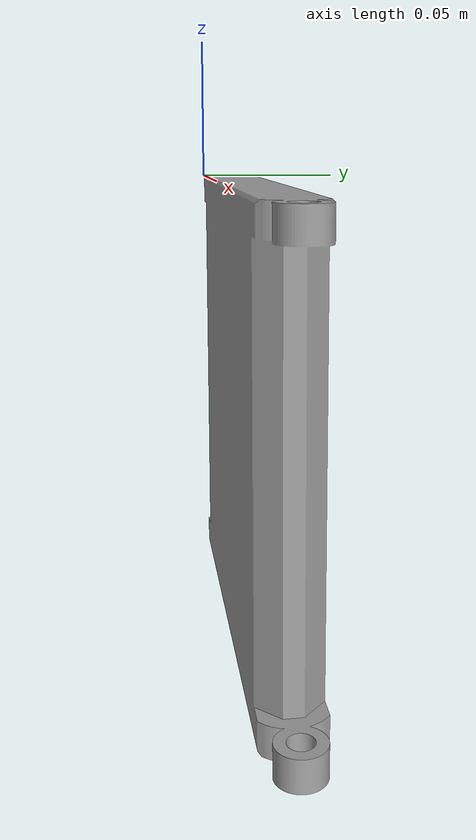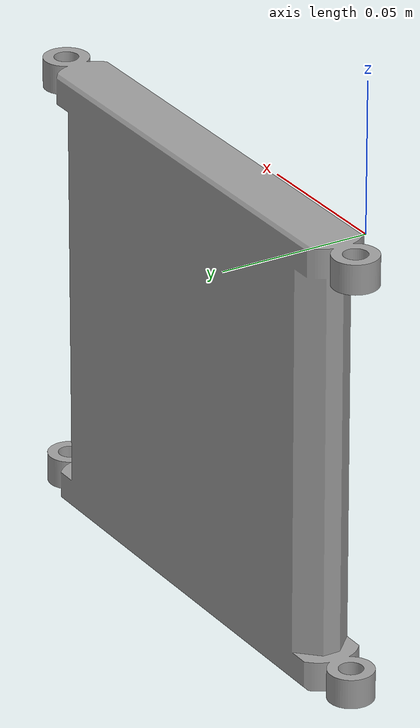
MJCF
<mujoco model="f3_block_plate">
  <default>
    <default class="visual">
      <geom group="2" type="mesh" contype="0" conaffinity="0"/>
    </default>
    <default class="collision">
      <geom group="3" type="mesh"/>
    </default>
  </default>
  <asset>
    <material name="Steel_-_Satin" specular="0.5" shininess="0.5" rgba="0.627451 0.627451 0.627451 1.0"/>
    <mesh file="f3_block_plate.obj"/>
    <mesh file="f3_block_plate_collision_0.obj"/>
    <mesh file="f3_block_plate_collision_1.obj"/>
    <mesh file="f3_block_plate_collision_2.obj"/>
    <mesh file="f3_block_plate_collision_3.obj"/>
    <mesh file="f3_block_plate_collision_4.obj"/>
    <mesh file="f3_block_plate_collision_5.obj"/>
  </asset>
  <worldbody>
    <body name="f3_block_plate">
      <geom material="Steel_-_Satin" mesh="f3_block_plate" class="visual"/>
      <geom mesh="f3_block_plate_collision_0" rgba="0.9077124507387407 0.29377895798884013 0.5436700963284631 1" class="collision"/>
      <geom mesh="f3_block_plate_collision_1" rgba="0.24642417137362682 0.07594623860513072 0.9020027839853094 1" class="collision"/>
      <geom mesh="f3_block_plate_collision_2" rgba="0.8769477598640406 0.584691402266475 0.24918232798303874 1" class="collision"/>
      <geom mesh="f3_block_plate_collision_3" rgba="0.8554832965088291 0.260519618042632 0.8279532148144052 1" class="collision"/>
      <geom mesh="f3_block_plate_collision_4" rgba="0.9320675950430862 0.29361683331628186 0.08420302536934521 1" class="collision"/>
      <geom mesh="f3_block_plate_collision_5" rgba="0.16398313908284667 0.46047024653235913 0.637934623197355 1" class="collision"/>
    </body>
  </worldbody>
</mujoco>
